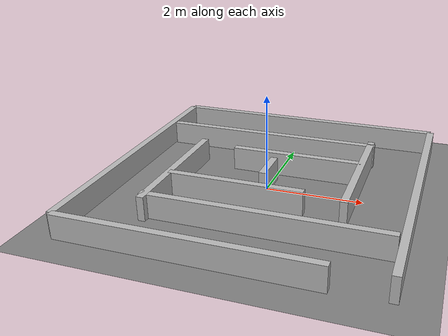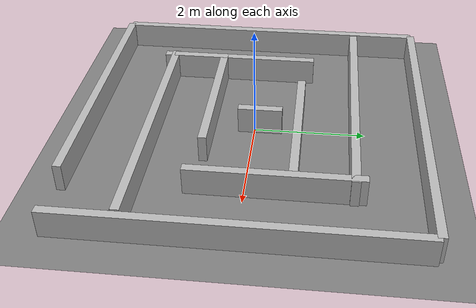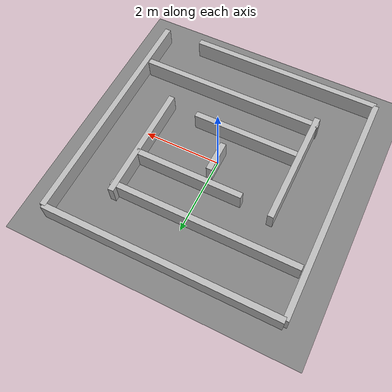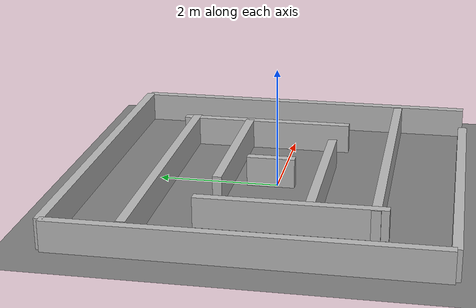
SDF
<?xml version="1.0" ?>
<sdf version="1.8">
  <world name="maze_world">
    <physics type="ode">
      <real_time_update_rate>1000.0</real_time_update_rate>
      <max_step_size>0.001</max_step_size>
      <real_time_factor>1</real_time_factor>
      <ode>
        <solver>
          <type>quick</type>
          <iters>50</iters>
        </solver>
      </ode>
    </physics>

    <plugin filename="gz-sim-physics-system" name="gz::sim::systems::Physics"/>
    <plugin filename="gz-sim-user-commands-system" name="gz::sim::systems::UserCommands"/>
    <plugin filename="gz-sim-scene-broadcaster-system" name="gz::sim::systems::SceneBroadcaster"/>

    <light name="maze_sun" type="directional">
      <pose>0 0 10 0 0 0</pose>
      <direction>-0.5 0.5 -1</direction>
      <diffuse>0.8 0.8 0.8 1</diffuse>
      <specular>0.2 0.2 0.2 1</specular>
    </light>

    <model name="ground">
      <static>true</static>
      <link name="link">
        <collision name="collision">
          <geometry><plane><normal>0 0 1</normal><size>20 20</size></plane></geometry>
        </collision>
        <visual name="visual">
          <geometry><plane><normal>0 0 1</normal><size>20 20</size></plane></geometry>
          <material><ambient>0.5 0.5 0.5 1</ambient><diffuse>0.5 0.5 0.5 1</diffuse></material>
        </visual>
      </link>
    </model>

    <model name="spiral_maze_scaled">
      <static>true</static>
      <link name="walls">
        <visual name="out_top"><pose>0 3 0.25 0 0 0</pose><geometry><box><size>6.0 0.15 0.5</size></box></geometry></visual>
        <collision name="out_top_c"><pose>0 3 0.25 0 0 0</pose><geometry><box><size>6.0 0.15 0.5</size></box></geometry></collision>

        <visual name="out_bot"><pose>-0.5 -3 0.25 0 0 0</pose><geometry><box><size>5.0 0.15 0.5</size></box></geometry></visual>
        <collision name="out_bot_c"><pose>-0.5 -3 0.25 0 0 0</pose><geometry><box><size>5.0 0.15 0.5</size></box></geometry></collision>

        <visual name="out_left"><pose>-3 0 0.25 0 0 0</pose><geometry><box><size>0.15 6.0 0.5</size></box></geometry></visual>
        <collision name="out_left_c"><pose>-3 0 0.25 0 0 0</pose><geometry><box><size>0.15 6.0 0.5</size></box></geometry></collision>

        <visual name="out_right"><pose>3 0 0.25 0 0 0</pose><geometry><box><size>0.15 6.0 0.5</size></box></geometry></visual>
        <collision name="out_right_c"><pose>3 0 0.25 0 0 0</pose><geometry><box><size>0.15 6.0 0.5</size></box></geometry></collision>

        <visual name="mid_top"><pose>-0.5 1.8 0.25 0 0 0</pose><geometry><box><size>4.8 0.15 0.5</size></box></geometry></visual>
        <collision name="mid_top_c"><pose>-0.5 1.8 0.25 0 0 0</pose><geometry><box><size>4.8 0.15 0.5</size></box></geometry></collision>

        <visual name="mid_bot"><pose>0.5 -1.8 0.25 0 0 0</pose><geometry><box><size>4.8 0.15 0.5</size></box></geometry></visual>
        <collision name="mid_bot_c"><pose>0.5 -1.8 0.25 0 0 0</pose><geometry><box><size>4.8 0.15 0.5</size></box></geometry></collision>

        <visual name="mid_left"><pose>-1.8 -0.5 0.25 0 0 0</pose><geometry><box><size>0.15 3.0 0.5</size></box></geometry></visual>
        <collision name="mid_left_c"><pose>-1.8 -0.5 0.25 0 0 0</pose><geometry><box><size>0.15 3.0 0.5</size></box></geometry></collision>

        <visual name="mid_right"><pose>1.8 0.5 0.25 0 0 0</pose><geometry><box><size>0.15 3.0 0.5</size></box></geometry></visual>
        <collision name="mid_right_c"><pose>1.8 0.5 0.25 0 0 0</pose><geometry><box><size>0.15 3.0 0.5</size></box></geometry></collision>

        <visual name="in_top"><pose>0.4 0.8 0.25 0 0 0</pose><geometry><box><size>2.8 0.15 0.5</size></box></geometry></visual>
        <collision name="in_top_c"><pose>0.4 0.8 0.25 0 0 0</pose><geometry><box><size>2.8 0.15 0.5</size></box></geometry></collision>

        <visual name="in_bot"><pose>-0.4 -0.8 0.25 0 0 0</pose><geometry><box><size>2.8 0.15 0.5</size></box></geometry></visual>
        <collision name="in_bot_c"><pose>-0.4 -0.8 0.25 0 0 0</pose><geometry><box><size>2.8 0.15 0.5</size></box></geometry></collision>

        <visual name="center_stub"><pose>0 0.1 0.25 0 0 0</pose><geometry><box><size>0.15 0.8 0.5</size></box></geometry></visual>
        <collision name="center_stub_c"><pose>0 0.1 0.25 0 0 0</pose><geometry><box><size>0.15 0.8 0.5</size></box></geometry></collision>
      </link>
    </model>
  </world>
</sdf>
